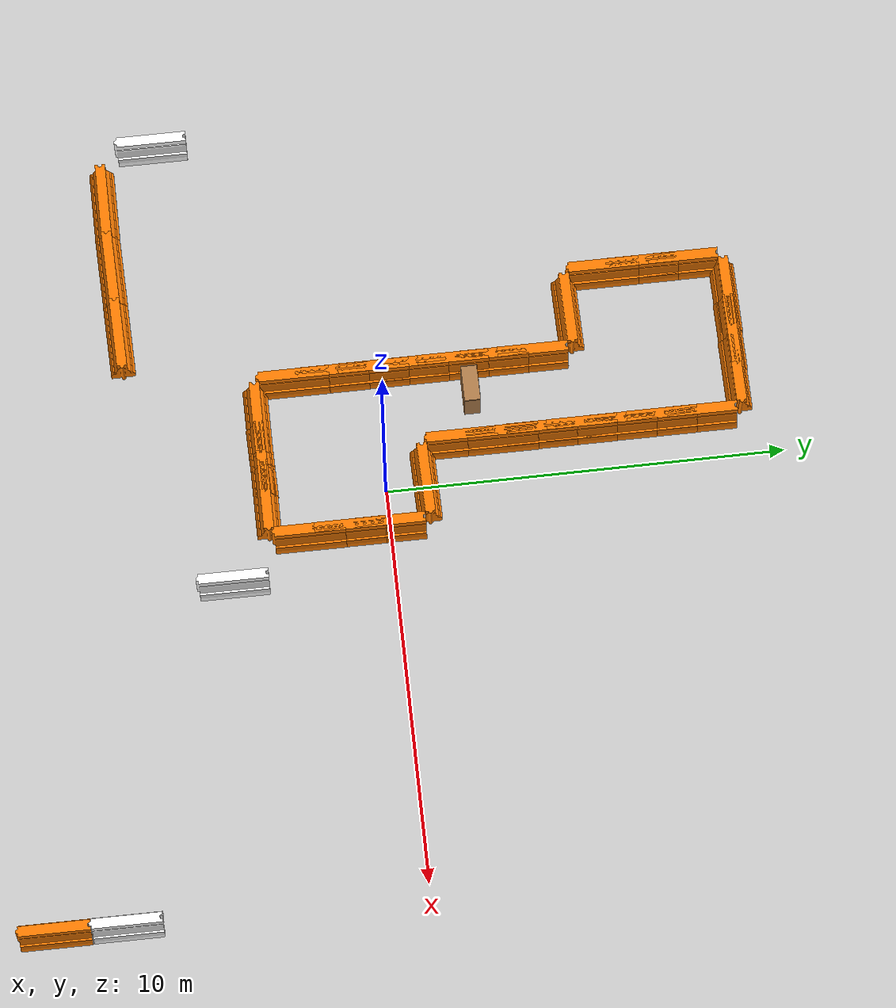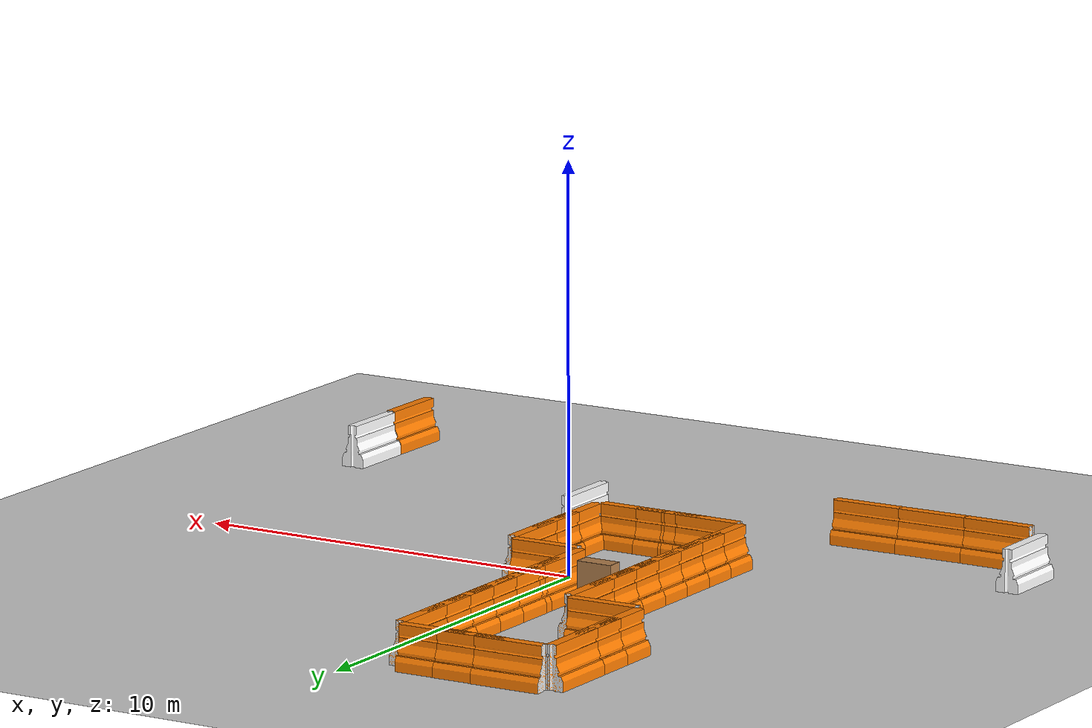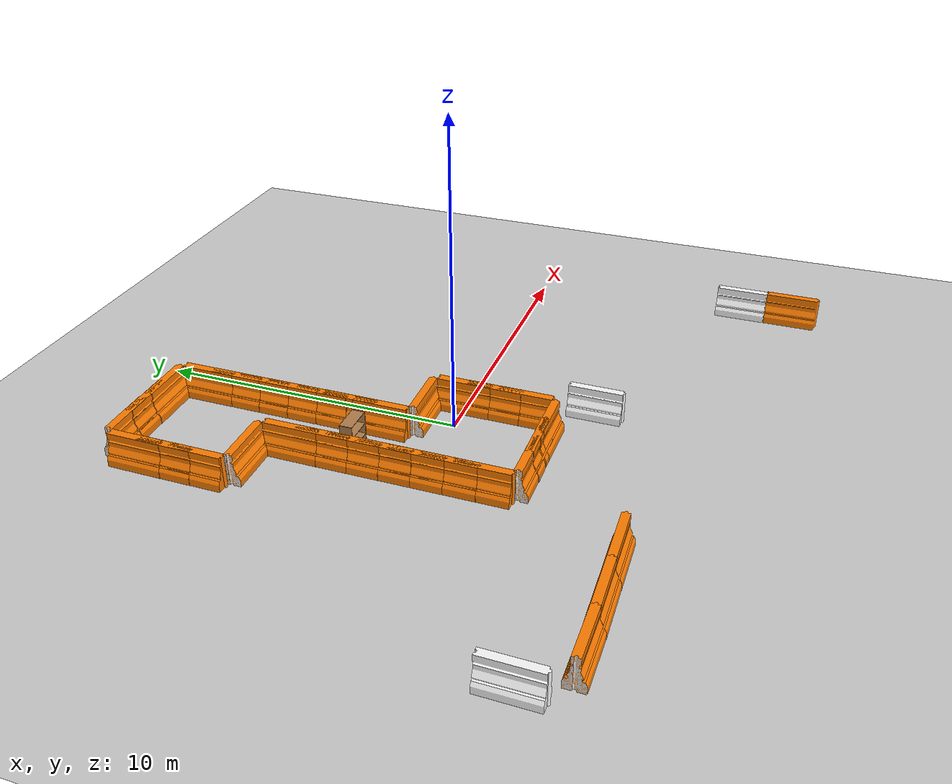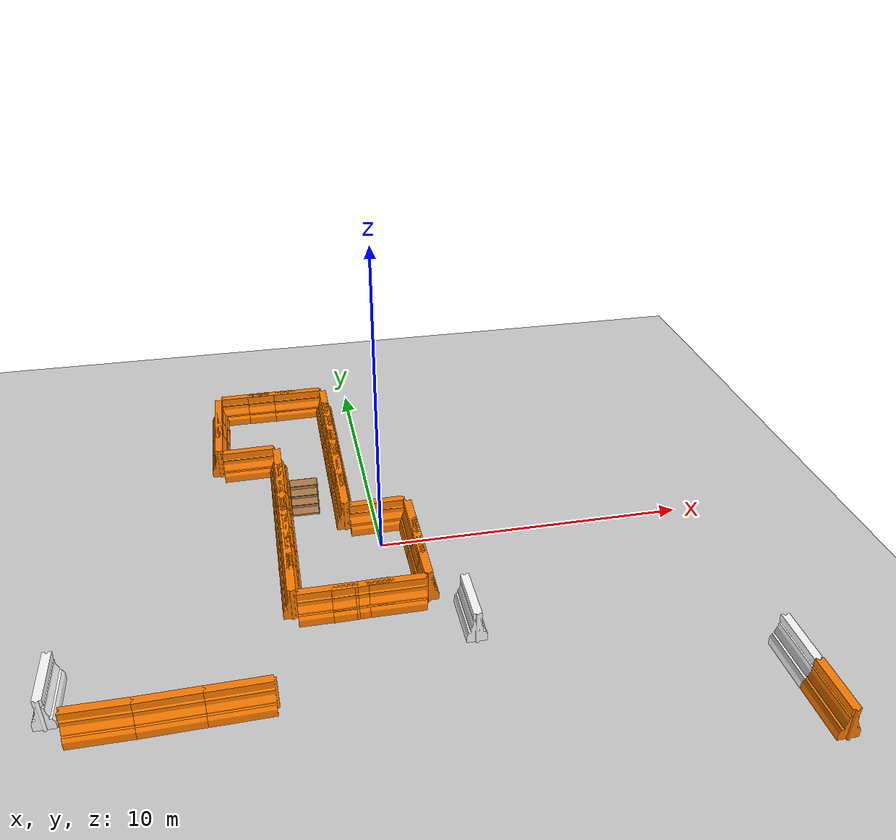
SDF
<sdf version="1.6">
 <world name="default">
  <model name="ground_plane">
   <static>1</static>
   <link name="link">
    <collision name="collision">
     <geometry><plane><normal>0 0 1</normal><size>100 100</size></plane></geometry>
     <surface><friction><ode><mu>100</mu><mu2>50</mu2></ode></friction></surface>
    </collision>
    <visual name="visual">
     <cast_shadows>0</cast_shadows>
     <geometry><plane><normal>0 0 1</normal><size>100 100</size></plane></geometry>
     <material>
      <script><uri>file://media/materials/scripts/gazebo.material</uri><name>Gazebo/Grey</name></script>
     </material>
    </visual>
    <velocity_decay><linear>0</linear><angular>0</angular></velocity_decay>
   </link>
  </model>
  <model name="drc_practice_organge_jersey_barrier">
   <static>1</static>
   <link name="link">
    <visual name="visual">
     <geometry>
      <mesh><uri>model://drc_practice_orange_jersey_barrier/meshes/jersey_barrier.dae</uri></mesh>
     </geometry>
    </visual>
    <collision name="collision">
     <geometry>
      <mesh><uri>model://drc_practice_orange_jersey_barrier/meshes/jersey_barrier.dae</uri></mesh>
     </geometry>
    </collision>
    <velocity_decay><linear>0</linear><angular>0</angular></velocity_decay>
   </link>
   <pose>-4.54889 -6.23392 0 0 -0 1.59364</pose>
  </model>
  <model name="drc_practice_white_jersey_barrier">
   <static>1</static>
   <link name="link">
    <visual name="visual">
     <geometry>
      <mesh><uri>model://drc_practice_white_jersey_barrier/meshes/jersey_barrier.dae</uri></mesh>
     </geometry>
    </visual>
    <collision name="collision">
     <geometry>
      <mesh><uri>model://drc_practice_white_jersey_barrier/meshes/jersey_barrier.dae</uri></mesh>
     </geometry>
    </collision>
    <velocity_decay><linear>0</linear><angular>0</angular></velocity_decay>
   </link>
   <pose>-9.48699 -4.9367 0 0 -0 0</pose>
  </model>
  <model name="drc_practice_organge_jersey_barrier_0">
   <static>1</static>
   <link name="link">
    <visual name="visual">
     <geometry>
      <mesh><uri>model://drc_practice_orange_jersey_barrier/meshes/jersey_barrier.dae</uri></mesh>
     </geometry>
    </visual>
    <collision name="collision">
     <geometry>
      <mesh><uri>model://drc_practice_orange_jersey_barrier/meshes/jersey_barrier.dae</uri></mesh>
     </geometry>
    </collision>
    <velocity_decay><linear>0</linear><angular>0</angular></velocity_decay>
   </link>
   <pose>-6.30934 -6.26351 0 0 -0 1.59467</pose>
  </model>
  <model name="drc_practice_organge_jersey_barrier_1">
   <static>1</static>
   <link name="link">
    <visual name="visual">
     <geometry>
      <mesh><uri>model://drc_practice_orange_jersey_barrier/meshes/jersey_barrier.dae</uri></mesh>
     </geometry>
    </visual>
    <collision name="collision">
     <geometry>
      <mesh><uri>model://drc_practice_orange_jersey_barrier/meshes/jersey_barrier.dae</uri></mesh>
     </geometry>
    </collision>
    <velocity_decay><linear>0</linear><angular>0</angular></velocity_decay>
   </link>
   <pose>-8.06556 -6.2736 0 0 -0 1.57109</pose>
  </model>
  <model name="drc_practice_white_jersey_barrier_0">
   <static>1</static>
   <link name="link">
    <visual name="visual">
     <geometry>
      <mesh><uri>model://drc_practice_white_jersey_barrier/meshes/jersey_barrier.dae</uri></mesh>
     </geometry>
    </visual>
    <collision name="collision">
     <geometry>
      <mesh><uri>model://drc_practice_white_jersey_barrier/meshes/jersey_barrier.dae</uri></mesh>
     </geometry>
    </collision>
    <velocity_decay><linear>0</linear><angular>0</angular></velocity_decay>
   </link>
   <pose>10.3176 -7.4365 0 0 -0 0</pose>
  </model>
  <model name="drc_practice_organge_jersey_barrier_2">
   <static>1</static>
   <link name="link">
    <visual name="visual">
     <geometry>
      <mesh><uri>model://drc_practice_orange_jersey_barrier/meshes/jersey_barrier.dae</uri></mesh>
     </geometry>
    </visual>
    <collision name="collision">
     <geometry>
      <mesh><uri>model://drc_practice_orange_jersey_barrier/meshes/jersey_barrier.dae</uri></mesh>
     </geometry>
    </collision>
    <velocity_decay><linear>0</linear><angular>0</angular></velocity_decay>
   </link>
   <pose>10.3218 -9.21435 0 0 -0 0</pose>
  </model>
  <model name="drc_practice_white_jersey_barrier_0_clone">
   <static>1</static>
   <link name="link">
    <visual name="visual">
     <geometry>
      <mesh><uri>model://drc_practice_white_jersey_barrier/meshes/jersey_barrier.dae</uri></mesh>
     </geometry>
    </visual>
    <collision name="collision">
     <geometry>
      <mesh><uri>model://drc_practice_white_jersey_barrier/meshes/jersey_barrier.dae</uri></mesh>
     </geometry>
    </collision>
    <velocity_decay><linear>0</linear><angular>0</angular></velocity_decay>
   </link>
   <pose>2 -4 0 0 -0 0</pose>
  </model>
  <model name="drc_practice_organge_jersey_barrier_1_clone">
   <static>1</static>
   <link name="link">
    <visual name="visual">
     <geometry>
      <mesh><uri>model://drc_practice_orange_jersey_barrier/meshes/jersey_barrier.dae</uri></mesh>
     </geometry>
    </visual>
    <collision name="collision">
     <geometry>
      <mesh><uri>model://drc_practice_orange_jersey_barrier/meshes/jersey_barrier.dae</uri></mesh>
     </geometry>
    </collision>
    <velocity_decay><linear>0</linear><angular>0</angular></velocity_decay>
   </link>
   <pose>0 -3 0 0 -0 1.57109</pose>
  </model>
  <model name="drc_practice_organge_jersey_barrier_1_clone_0">
   <static>1</static>
   <link name="link">
    <visual name="visual">
     <geometry>
      <mesh><uri>model://drc_practice_orange_jersey_barrier/meshes/jersey_barrier.dae</uri></mesh>
     </geometry>
    </visual>
    <collision name="collision">
     <geometry>
      <mesh><uri>model://drc_practice_orange_jersey_barrier/meshes/jersey_barrier.dae</uri></mesh>
     </geometry>
    </collision>
    <velocity_decay><linear>0</linear><angular>0</angular></velocity_decay>
   </link>
   <pose>-2 -3 0 0 -0 1.57109</pose>
  </model>
  <model name="drc_practice_organge_jersey_barrier_2_clone">
   <static>1</static>
   <link name="link">
    <visual name="visual">
     <geometry>
      <mesh><uri>model://drc_practice_orange_jersey_barrier/meshes/jersey_barrier.dae</uri></mesh>
     </geometry>
    </visual>
    <collision name="collision">
     <geometry>
      <mesh><uri>model://drc_practice_orange_jersey_barrier/meshes/jersey_barrier.dae</uri></mesh>
     </geometry>
    </collision>
    <velocity_decay><linear>0</linear><angular>0</angular></velocity_decay>
   </link>
   <pose>-3 -2 0 0 -0 0</pose>
  </model>
  <model name="drc_practice_organge_jersey_barrier_2_clone_0">
   <static>1</static>
   <link name="link">
    <visual name="visual">
     <geometry>
      <mesh><uri>model://drc_practice_orange_jersey_barrier/meshes/jersey_barrier.dae</uri></mesh>
     </geometry>
    </visual>
    <collision name="collision">
     <geometry>
      <mesh><uri>model://drc_practice_orange_jersey_barrier/meshes/jersey_barrier.dae</uri></mesh>
     </geometry>
    </collision>
    <velocity_decay><linear>0</linear><angular>0</angular></velocity_decay>
   </link>
   <pose>-3 0 0 0 -0 0</pose>
  </model>
  <model name="drc_practice_organge_jersey_barrier_2_clone_1">
   <static>1</static>
   <link name="link">
    <visual name="visual">
     <geometry>
      <mesh><uri>model://drc_practice_orange_jersey_barrier/meshes/jersey_barrier.dae</uri></mesh>
     </geometry>
    </visual>
    <collision name="collision">
     <geometry>
      <mesh><uri>model://drc_practice_orange_jersey_barrier/meshes/jersey_barrier.dae</uri></mesh>
     </geometry>
    </collision>
    <velocity_decay><linear>0</linear><angular>0</angular></velocity_decay>
   </link>
   <pose>1 -2 0 0 -0 0</pose>
  </model>
  <model name="drc_practice_organge_jersey_barrier_2_clone_2">
   <static>1</static>
   <link name="link">
    <visual name="visual">
     <geometry>
      <mesh><uri>model://drc_practice_orange_jersey_barrier/meshes/jersey_barrier.dae</uri></mesh>
     </geometry>
    </visual>
    <collision name="collision">
     <geometry>
      <mesh><uri>model://drc_practice_orange_jersey_barrier/meshes/jersey_barrier.dae</uri></mesh>
     </geometry>
    </collision>
    <velocity_decay><linear>0</linear><angular>0</angular></velocity_decay>
   </link>
   <pose>1 0 0 0 -0 0</pose>
  </model>
  <model name="drc_practice_organge_jersey_barrier_clone">
   <static>1</static>
   <link name="link">
    <visual name="visual">
     <geometry>
      <mesh><uri>model://drc_practice_orange_jersey_barrier/meshes/jersey_barrier.dae</uri></mesh>
     </geometry>
    </visual>
    <collision name="collision">
     <geometry>
      <mesh><uri>model://drc_practice_orange_jersey_barrier/meshes/jersey_barrier.dae</uri></mesh>
     </geometry>
    </collision>
    <velocity_decay><linear>0</linear><angular>0</angular></velocity_decay>
   </link>
   <pose>0 1 0 0 -0 1.59364</pose>
  </model>
  <model name="drc_practice_organge_jersey_barrier_2_clone_3">
   <static>1</static>
   <link name="link">
    <visual name="visual">
     <geometry>
      <mesh><uri>model://drc_practice_orange_jersey_barrier/meshes/jersey_barrier.dae</uri></mesh>
     </geometry>
    </visual>
    <collision name="collision">
     <geometry>
      <mesh><uri>model://drc_practice_orange_jersey_barrier/meshes/jersey_barrier.dae</uri></mesh>
     </geometry>
    </collision>
    <velocity_decay><linear>0</linear><angular>0</angular></velocity_decay>
   </link>
   <pose>-3 2 0 0 -0 0</pose>
  </model>
  <model name="drc_practice_organge_jersey_barrier_2_clone_4">
   <static>1</static>
   <link name="link">
    <visual name="visual">
     <geometry>
      <mesh><uri>model://drc_practice_orange_jersey_barrier/meshes/jersey_barrier.dae</uri></mesh>
     </geometry>
    </visual>
    <collision name="collision">
     <geometry>
      <mesh><uri>model://drc_practice_orange_jersey_barrier/meshes/jersey_barrier.dae</uri></mesh>
     </geometry>
    </collision>
    <velocity_decay><linear>0</linear><angular>0</angular></velocity_decay>
   </link>
   <pose>-1 2 0 0 -0 0</pose>
  </model>
  <model name="drc_practice_organge_jersey_barrier_2_clone_5">
   <static>1</static>
   <link name="link">
    <visual name="visual">
     <geometry>
      <mesh><uri>model://drc_practice_orange_jersey_barrier/meshes/jersey_barrier.dae</uri></mesh>
     </geometry>
    </visual>
    <collision name="collision">
     <geometry>
      <mesh><uri>model://drc_practice_orange_jersey_barrier/meshes/jersey_barrier.dae</uri></mesh>
     </geometry>
    </collision>
    <velocity_decay><linear>0</linear><angular>0</angular></velocity_decay>
   </link>
   <pose>-3 4 0 0 -0 0</pose>
  </model>
  <model name="drc_practice_organge_jersey_barrier_2_clone_6">
   <static>1</static>
   <link name="link">
    <visual name="visual">
     <geometry>
      <mesh><uri>model://drc_practice_orange_jersey_barrier/meshes/jersey_barrier.dae</uri></mesh>
     </geometry>
    </visual>
    <collision name="collision">
     <geometry>
      <mesh><uri>model://drc_practice_orange_jersey_barrier/meshes/jersey_barrier.dae</uri></mesh>
     </geometry>
    </collision>
    <velocity_decay><linear>0</linear><angular>0</angular></velocity_decay>
   </link>
   <pose>-1 4 0 0 -0 0</pose>
  </model>
  <model name="drc_practice_organge_jersey_barrier_clone_0">
   <static>1</static>
   <link name="link">
    <visual name="visual">
     <geometry>
      <mesh><uri>model://drc_practice_orange_jersey_barrier/meshes/jersey_barrier.dae</uri></mesh>
     </geometry>
    </visual>
    <collision name="collision">
     <geometry>
      <mesh><uri>model://drc_practice_orange_jersey_barrier/meshes/jersey_barrier.dae</uri></mesh>
     </geometry>
    </collision>
    <velocity_decay><linear>0</linear><angular>0</angular></velocity_decay>
   </link>
   <pose>-4 5 0 0 -0 1.59364</pose>
  </model>
  <model name="drc_practice_organge_jersey_barrier_2_clone_7">
   <static>1</static>
   <link name="link">
    <visual name="visual">
     <geometry>
      <mesh><uri>model://drc_practice_orange_jersey_barrier/meshes/jersey_barrier.dae</uri></mesh>
     </geometry>
    </visual>
    <collision name="collision">
     <geometry>
      <mesh><uri>model://drc_practice_orange_jersey_barrier/meshes/jersey_barrier.dae</uri></mesh>
     </geometry>
    </collision>
    <velocity_decay><linear>0</linear><angular>0</angular></velocity_decay>
   </link>
   <pose>-5 6 0 0 -0 0</pose>
  </model>
  <model name="drc_practice_organge_jersey_barrier_2_clone_8">
   <static>1</static>
   <link name="link">
    <visual name="visual">
     <geometry>
      <mesh><uri>model://drc_practice_orange_jersey_barrier/meshes/jersey_barrier.dae</uri></mesh>
     </geometry>
    </visual>
    <collision name="collision">
     <geometry>
      <mesh><uri>model://drc_practice_orange_jersey_barrier/meshes/jersey_barrier.dae</uri></mesh>
     </geometry>
    </collision>
    <velocity_decay><linear>0</linear><angular>0</angular></velocity_decay>
   </link>
   <pose>-5 8 0 0 -0 0</pose>
  </model>
  <model name="drc_practice_organge_jersey_barrier_clone_1">
   <static>1</static>
   <link name="link">
    <visual name="visual">
     <geometry>
      <mesh><uri>model://drc_practice_orange_jersey_barrier/meshes/jersey_barrier.dae</uri></mesh>
     </geometry>
    </visual>
    <collision name="collision">
     <geometry>
      <mesh><uri>model://drc_practice_orange_jersey_barrier/meshes/jersey_barrier.dae</uri></mesh>
     </geometry>
    </collision>
    <velocity_decay><linear>0</linear><angular>0</angular></velocity_decay>
   </link>
   <pose>-4 9 0 0 -0 1.59364</pose>
  </model>
  <model name="drc_practice_organge_jersey_barrier_clone_2">
   <static>1</static>
   <link name="link">
    <visual name="visual">
     <geometry>
      <mesh><uri>model://drc_practice_orange_jersey_barrier/meshes/jersey_barrier.dae</uri></mesh>
     </geometry>
    </visual>
    <collision name="collision">
     <geometry>
      <mesh><uri>model://drc_practice_orange_jersey_barrier/meshes/jersey_barrier.dae</uri></mesh>
     </geometry>
    </collision>
    <velocity_decay><linear>0</linear><angular>0</angular></velocity_decay>
   </link>
   <pose>-2 9 0 0 -0 1.59364</pose>
  </model>
  <model name="drc_practice_organge_jersey_barrier_2_clone_2_clone">
   <static>1</static>
   <link name="link">
    <visual name="visual">
     <geometry>
      <mesh><uri>model://drc_practice_orange_jersey_barrier/meshes/jersey_barrier.dae</uri></mesh>
     </geometry>
    </visual>
    <collision name="collision">
     <geometry>
      <mesh><uri>model://drc_practice_orange_jersey_barrier/meshes/jersey_barrier.dae</uri></mesh>
     </geometry>
    </collision>
    <velocity_decay><linear>0</linear><angular>0</angular></velocity_decay>
   </link>
   <pose>-1 6 0 0 -0 0</pose>
  </model>
  <model name="drc_practice_organge_jersey_barrier_2_clone_2_clone_0">
   <static>1</static>
   <link name="link">
    <visual name="visual">
     <geometry>
      <mesh><uri>model://drc_practice_orange_jersey_barrier/meshes/jersey_barrier.dae</uri></mesh>
     </geometry>
    </visual>
    <collision name="collision">
     <geometry>
      <mesh><uri>model://drc_practice_orange_jersey_barrier/meshes/jersey_barrier.dae</uri></mesh>
     </geometry>
    </collision>
    <velocity_decay><linear>0</linear><angular>0</angular></velocity_decay>
   </link>
   <pose>-1 8 0 0 -0 0</pose>
  </model>
  <model name="drc_practice_organge_jersey_barrier_2_clone_0_clone">
   <static>1</static>
   <link name="link">
    <visual name="visual">
     <geometry>
      <mesh><uri>model://drc_practice_orange_jersey_barrier/meshes/jersey_barrier.dae</uri></mesh>
     </geometry>
    </visual>
    <collision name="collision">
     <geometry>
      <mesh><uri>model://drc_practice_orange_jersey_barrier/meshes/jersey_barrier.dae</uri></mesh>
     </geometry>
    </collision>
    <velocity_decay><linear>0</linear><angular>0</angular></velocity_decay>
   </link>
   <pose>-3 -1 0 0 -0 0</pose>
  </model>
  <model name="drc_practice_organge_jersey_barrier_2_clone_0_clone_0">
   <static>1</static>
   <link name="link">
    <visual name="visual">
     <geometry>
      <mesh><uri>model://drc_practice_orange_jersey_barrier/meshes/jersey_barrier.dae</uri></mesh>
     </geometry>
    </visual>
    <collision name="collision">
     <geometry>
      <mesh><uri>model://drc_practice_orange_jersey_barrier/meshes/jersey_barrier.dae</uri></mesh>
     </geometry>
    </collision>
    <velocity_decay><linear>0</linear><angular>0</angular></velocity_decay>
   </link>
   <pose>-3 1 0 0 -0 0</pose>
  </model>
  <model name="drc_practice_organge_jersey_barrier_2_clone_0_clone_1">
   <static>1</static>
   <link name="link">
    <visual name="visual">
     <geometry>
      <mesh><uri>model://drc_practice_orange_jersey_barrier/meshes/jersey_barrier.dae</uri></mesh>
     </geometry>
    </visual>
    <collision name="collision">
     <geometry>
      <mesh><uri>model://drc_practice_orange_jersey_barrier/meshes/jersey_barrier.dae</uri></mesh>
     </geometry>
    </collision>
    <velocity_decay><linear>0</linear><angular>0</angular></velocity_decay>
   </link>
   <pose>-3 3 0 0 -0 0</pose>
  </model>
  <model name="drc_practice_organge_jersey_barrier_2_clone_0_clone_2">
   <static>1</static>
   <link name="link">
    <visual name="visual">
     <geometry>
      <mesh><uri>model://drc_practice_orange_jersey_barrier/meshes/jersey_barrier.dae</uri></mesh>
     </geometry>
    </visual>
    <collision name="collision">
     <geometry>
      <mesh><uri>model://drc_practice_orange_jersey_barrier/meshes/jersey_barrier.dae</uri></mesh>
     </geometry>
    </collision>
    <velocity_decay><linear>0</linear><angular>0</angular></velocity_decay>
   </link>
   <pose>-5 7 0 0 -0 0</pose>
  </model>
  <model name="drc_practice_organge_jersey_barrier_clone_2_clone">
   <static>1</static>
   <link name="link">
    <visual name="visual">
     <geometry>
      <mesh><uri>model://drc_practice_orange_jersey_barrier/meshes/jersey_barrier.dae</uri></mesh>
     </geometry>
    </visual>
    <collision name="collision">
     <geometry>
      <mesh><uri>model://drc_practice_orange_jersey_barrier/meshes/jersey_barrier.dae</uri></mesh>
     </geometry>
    </collision>
    <velocity_decay><linear>0</linear><angular>0</angular></velocity_decay>
   </link>
   <pose>-3 9 0 0 -0 1.59364</pose>
  </model>
  <model name="drc_practice_organge_jersey_barrier_clone_2_clone_0">
   <static>1</static>
   <link name="link">
    <visual name="visual">
     <geometry>
      <mesh><uri>model://drc_practice_orange_jersey_barrier/meshes/jersey_barrier.dae</uri></mesh>
     </geometry>
    </visual>
    <collision name="collision">
     <geometry>
      <mesh><uri>model://drc_practice_orange_jersey_barrier/meshes/jersey_barrier.dae</uri></mesh>
     </geometry>
    </collision>
    <velocity_decay><linear>0</linear><angular>0</angular></velocity_decay>
   </link>
   <pose>-1 -3 0 0 -0 1.59364</pose>
  </model>
  <model name="drc_practice_organge_jersey_barrier_2_clone_0_clone_clone">
   <static>1</static>
   <link name="link">
    <visual name="visual">
     <geometry>
      <mesh><uri>model://drc_practice_orange_jersey_barrier/meshes/jersey_barrier.dae</uri></mesh>
     </geometry>
    </visual>
    <collision name="collision">
     <geometry>
      <mesh><uri>model://drc_practice_orange_jersey_barrier/meshes/jersey_barrier.dae</uri></mesh>
     </geometry>
    </collision>
    <velocity_decay><linear>0</linear><angular>0</angular></velocity_decay>
   </link>
   <pose>1 -1 0 0 -0 0</pose>
  </model>
  <model name="drc_practice_organge_jersey_barrier_2_clone_0_clone_clone_0">
   <static>1</static>
   <link name="link">
    <visual name="visual">
     <geometry>
      <mesh><uri>model://drc_practice_orange_jersey_barrier/meshes/jersey_barrier.dae</uri></mesh>
     </geometry>
    </visual>
    <collision name="collision">
     <geometry>
      <mesh><uri>model://drc_practice_orange_jersey_barrier/meshes/jersey_barrier.dae</uri></mesh>
     </geometry>
    </collision>
    <velocity_decay><linear>0</linear><angular>0</angular></velocity_decay>
   </link>
   <pose>-0.99404 3.02596 0 0 -0 0</pose>
  </model>
  <model name="drc_practice_organge_jersey_barrier_2_clone_0_clone_clone_1">
   <static>1</static>
   <link name="link">
    <visual name="visual">
     <geometry>
      <mesh><uri>model://drc_practice_orange_jersey_barrier/meshes/jersey_barrier.dae</uri></mesh>
     </geometry>
    </visual>
    <collision name="collision">
     <geometry>
      <mesh><uri>model://drc_practice_orange_jersey_barrier/meshes/jersey_barrier.dae</uri></mesh>
     </geometry>
    </collision>
    <velocity_decay><linear>0</linear><angular>0</angular></velocity_decay>
   </link>
   <pose>-1 5 0 0 -0 0</pose>
  </model>
  <model name="drc_practice_organge_jersey_barrier_2_clone_0_clone_clone_2">
   <static>1</static>
   <link name="link">
    <visual name="visual">
     <geometry>
      <mesh><uri>model://drc_practice_orange_jersey_barrier/meshes/jersey_barrier.dae</uri></mesh>
     </geometry>
    </visual>
    <collision name="collision">
     <geometry>
      <mesh><uri>model://drc_practice_orange_jersey_barrier/meshes/jersey_barrier.dae</uri></mesh>
     </geometry>
    </collision>
    <velocity_decay><linear>0</linear><angular>0</angular></velocity_decay>
   </link>
   <pose>-1 7 0 0 -0 0</pose>
  </model>
  <model name="bookshelf">
   <static>1</static>
   <link name="link">
    <inertial><mass>1</mass></inertial>
    <collision name="back">
     <pose>0 0.005 0.6 0 -0 0</pose>
     <geometry><box><size>0.9 0.01 1.2</size></box></geometry>
    </collision>
    <visual name="visual1">
     <pose>0 0.005 0.6 0 -0 0</pose>
     <geometry><box><size>0.9 0.01 1.2</size></box></geometry>
     <material>
      <script><uri>file://media/materials/scripts/gazebo.material</uri><name>Gazebo/Wood</name></script>
     </material>
    </visual>
    <collision name="left_side">
     <pose>0.45 -0.195 0.6 0 -0 0</pose>
     <geometry><box><size>0.02 0.4 1.2</size></box></geometry>
    </collision>
    <visual name="visual2">
     <pose>0.45 -0.195 0.6 0 -0 0</pose>
     <geometry><box><size>0.02 0.4 1.2</size></box></geometry>
     <material>
      <script><uri>file://media/materials/scripts/gazebo.material</uri><name>Gazebo/Wood</name></script>
     </material>
    </visual>
    <collision name="right_side">
     <pose>-0.45 -0.195 0.6 0 -0 0</pose>
     <geometry><box><size>0.02 0.4 1.2</size></box></geometry>
    </collision>
    <visual name="visual3">
     <pose>-0.45 -0.195 0.6 0 -0 0</pose>
     <geometry><box><size>0.02 0.4 1.2</size></box></geometry>
     <material>
      <script><uri>file://media/materials/scripts/gazebo.material</uri><name>Gazebo/Wood</name></script>
     </material>
    </visual>
    <collision name="bottom">
     <pose>0 -0.195 0.03 0 -0 0</pose>
     <geometry><box><size>0.88 0.4 0.06</size></box></geometry>
    </collision>
    <visual name="visual4">
     <pose>0 -0.195 0.03 0 -0 0</pose>
     <geometry><box><size>0.88 0.4 0.06</size></box></geometry>
     <material>
      <script><uri>file://media/materials/scripts/gazebo.material</uri><name>Gazebo/Wood</name></script>
     </material>
    </visual>
    <collision name="top">
     <pose>0 -0.195 1.19 0 -0 0</pose>
     <geometry><box><size>0.88 0.4 0.02</size></box></geometry>
    </collision>
    <visual name="visual5">
     <pose>0 -0.195 1.19 0 -0 0</pose>
     <geometry><box><size>0.88 0.4 0.02</size></box></geometry>
     <material>
      <script><uri>file://media/materials/scripts/gazebo.material</uri><name>Gazebo/Wood</name></script>
     </material>
    </visual>
    <collision name="low_shelf">
     <pose>0 -0.195 0.43 0 -0 0</pose>
     <geometry><box><size>0.88 0.4 0.02</size></box></geometry>
    </collision>
    <visual name="visual6">
     <pose>0 -0.195 0.43 0 -0 0</pose>
     <geometry><box><size>0.88 0.4 0.02</size></box></geometry>
     <material>
      <script><uri>file://media/materials/scripts/gazebo.material</uri><name>Gazebo/Wood</name></script>
     </material>
    </visual>
    <collision name="high_shelf">
     <pose>0 -0.195 0.8 0 -0 0</pose>
     <geometry><box><size>0.88 0.4 0.02</size></box></geometry>
    </collision>
    <visual name="visual7">
     <pose>0 -0.195 0.8 0 -0 0</pose>
     <geometry><box><size>0.88 0.4 0.02</size></box></geometry>
     <material>
      <script><uri>file://media/materials/scripts/gazebo.material</uri><name>Gazebo/Wood</name></script>
     </material>
    </visual>
   </link>
   <pose>-2.24294 2.55082 0 0 -0 0</pose>
  </model>
 </world>
</sdf>
